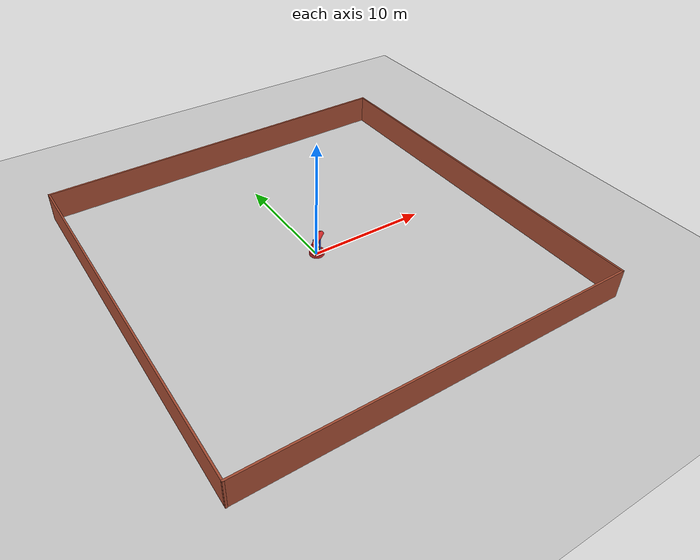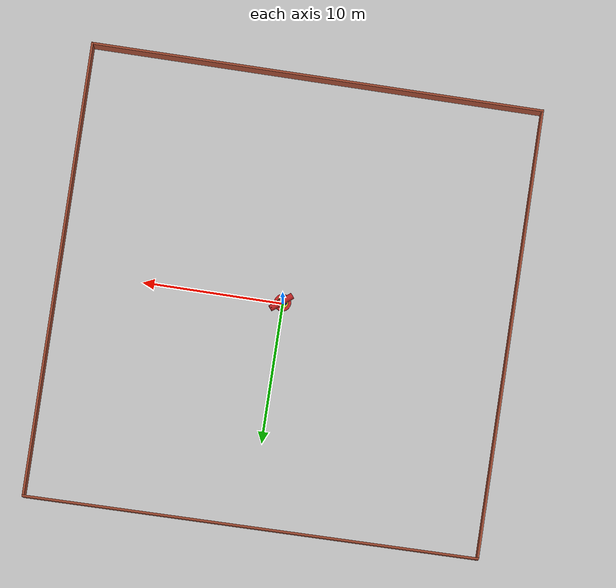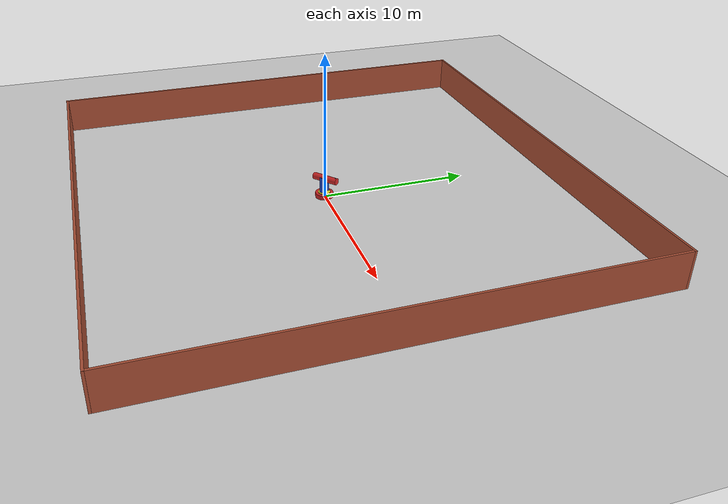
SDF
<sdf version="1.7">
 <world name="default">
  <light name="sun" type="directional">
   <pose>0 0 10 0 -0 0</pose>
   <diffuse>0.8 0.8 0.8 1</diffuse>
   <specular>0.2 0.2 0.2 1</specular>
   <attenuation>
    <range>1000</range>
    <constant>0.9</constant>
    <linear>0.01</linear>
    <quadratic>0.001</quadratic>
   </attenuation>
   <direction>-0.5 0.1 -0.9</direction>
   <spot><inner_angle>0</inner_angle><outer_angle>0</outer_angle><falloff>0</falloff></spot>
  </light>
  <model name="ground_plane">
   <static>1</static>
   <link name="link">
    <collision name="collision">
     <geometry><plane><normal>0 0 1</normal><size>100 100</size></plane></geometry>
     <surface>
      <contact><collide_bitmask>65535</collide_bitmask></contact>
      <friction><ode><mu>100</mu><mu2>50</mu2></ode></friction>
     </surface>
    </collision>
    <visual name="visual">
     <cast_shadows>0</cast_shadows>
     <geometry><plane><normal>0 0 1</normal><size>100 100</size></plane></geometry>
     <material>
      <script><uri>file://media/materials/scripts/gazebo.material</uri><name>Gazebo/Grey</name></script>
     </material>
    </visual>
   </link>
  </model>
  <gravity>0 0 -9.8</gravity>
  <magnetic_field>6e-06 2.3e-05 -4.2e-05</magnetic_field>
  <atmosphere type="adiabatic"/>
  <physics type="ode">
   <max_step_size>0.001</max_step_size>
   <real_time_factor>1</real_time_factor>
   <real_time_update_rate>1000</real_time_update_rate>
  </physics>
  <scene><ambient>0.4 0.4 0.4 1</ambient><background>0.7 0.7 0.7 1</background><shadows>1</shadows></scene>
  <audio><device>default</device></audio>
  <spherical_coordinates>
   <surface_model>EARTH_WGS84</surface_model>
   <latitude_deg>0</latitude_deg>
   <longitude_deg>0</longitude_deg>
   <elevation>0</elevation>
   <heading_deg>0</heading_deg>
  </spherical_coordinates>
  <light name="user_point_light_0" type="point">
   <pose>0.040895 0.233795 1 0 -0 0</pose>
   <diffuse>0.5 0.5 0.5 1</diffuse>
   <specular>0.1 0.1 0.1 1</specular>
   <attenuation>
    <range>20</range>
    <constant>0.5</constant>
    <linear>0.01</linear>
    <quadratic>0.001</quadratic>
   </attenuation>
   <cast_shadows>0</cast_shadows>
   <direction>0 0 -1</direction>
   <spot><inner_angle>0</inner_angle><outer_angle>0</outer_angle><falloff>0</falloff></spot>
  </light>
  <model name="robot_shooter">
   <link name="base_link">
    <inertial>
     <mass>5</mass>
     <inertia><ixx>0.4875</ixx><ixy>0</ixy><ixz>0</ixz><iyy>0.4875</iyy><iyz>0</iyz><izz>0.9</izz></inertia>
    </inertial>
    <collision name="base_link_collision">
     <geometry><cylinder><length>0.3</length><radius>0.6</radius></cylinder></geometry>
    </collision>
    <visual name="base_link_visual">
     <geometry><cylinder><length>0.3</length><radius>0.6</radius></cylinder></geometry>
     <material>
      <script><name>Gazebo/Red</name><uri>file://media/materials/scripts/gazebo.material</uri></script>
     </material>
    </visual>
   </link>
   <joint name="base_to_pan_joint" type="revolute">
    <pose relative_to="base_link">0 0 0.15 0 -0 0</pose>
    <parent>base_link</parent>
    <child>pan_link</child>
    <axis>
     <xyz>0 0 1</xyz>
     <limit><lower>-1e+16</lower><upper>1e+16</upper></limit>
     <dynamics>
      <damping>0.1</damping>
      <friction>0.1</friction>
      <spring_reference>0</spring_reference>
      <spring_stiffness>0</spring_stiffness>
     </dynamics>
    </axis>
   </joint>
   <link name="pan_link">
    <pose relative_to="base_to_pan_joint">0 0 0 0 -0 0</pose>
    <inertial>
     <pose>-0.05 0 0.08 0 -0 0</pose>
     <mass>2.5</mass>
     <inertia>
      <ixx>0.150667</ixx>
      <ixy>0</ixy>
      <ixz>0.04</ixz>
      <iyy>0.175667</iyy>
      <iyz>0</iyz>
      <izz>0.19</izz>
     </inertia>
    </inertial>
    <collision name="pan_link_collision">
     <geometry><cylinder><length>0.1</length><radius>0.4</radius></cylinder></geometry>
    </collision>
    <collision name="pan_link_fixed_joint_lump__left_pillar_link_collision_1">
     <pose>0.25 0 0.4 0 -0 0</pose>
     <geometry><box><size>0.02 0.4 1.5</size></box></geometry>
    </collision>
    <collision name="pan_link_fixed_joint_lump__right_pillar_link_collision_2">
     <pose>-0.25 0 0.4 0 -0 0</pose>
     <geometry><box><size>0.02 0.4 1.5</size></box></geometry>
    </collision>
    <visual name="pan_link_visual">
     <geometry><cylinder><length>0.1</length><radius>0.4</radius></cylinder></geometry>
     <material>
      <script><name>Gazebo/Yellow</name><uri>file://media/materials/scripts/gazebo.material</uri></script>
     </material>
    </visual>
    <visual name="pan_link_fixed_joint_lump__left_pillar_link_visual_1">
     <pose>0.25 0 0.4 0 -0 0</pose>
     <geometry><box><size>0.02 0.4 1.5</size></box></geometry>
     <material>
      <script><name>Gazebo/Blue</name><uri>file://media/materials/scripts/gazebo.material</uri></script>
     </material>
    </visual>
    <visual name="pan_link_fixed_joint_lump__right_pillar_link_visual_2">
     <pose>-0.25 0 0.4 0 -0 0</pose>
     <geometry><box><size>0.02 0.4 1.5</size></box></geometry>
     <material>
      <script><name>Gazebo/Blue</name><uri>file://media/materials/scripts/gazebo.material</uri></script>
     </material>
    </visual>
   </link>
   <joint name="right_pillar_to_barrel_joint" type="revolute">
    <pose relative_to="pan_link">-0.05 0 1.15 0 -0 0</pose>
    <parent>pan_link</parent>
    <child>barrel_link</child>
    <axis>
     <xyz>1 0 0</xyz>
     <limit><lower>-0.5</lower><upper>0.5</upper><effort>10</effort><velocity>1</velocity></limit>
     <dynamics><spring_reference>0</spring_reference><spring_stiffness>0</spring_stiffness></dynamics>
    </axis>
   </joint>
   <link name="barrel_link">
    <pose relative_to="right_pillar_to_barrel_joint">0 0 0 0 -0 0</pose>
    <inertial>
     <pose>0.004545 0.081818 0.013636 0 -0 0</pose>
     <mass>1.1</mass>
     <inertia>
      <ixx>0.0767818</ixx>
      <ixy>-0.00409091</ixy>
      <ixz>-0.000681818</ixz>
      <iyy>0.00337273</iyy>
      <iyz>-0.0122727</iyz>
      <izz>0.0749636</izz>
     </inertia>
    </inertial>
    <collision name="barrel_link_collision">
     <pose>0 0.1 0.1 1.65 -0 0</pose>
     <geometry><cylinder><length>1.8</length><radius>0.25</radius></cylinder></geometry>
    </collision>
    <collision name="barrel_link_fixed_joint_lump__camera_link_collision_1">
     <pose>0.05 0.9 0.15 0 -0 1.5708</pose>
     <geometry><box><size>0.05 0.05 0.05</size></box></geometry>
    </collision>
    <visual name="barrel_link_visual">
     <pose>0.05 0.1 -0.1 1.6 -0 0</pose>
     <geometry><cylinder><length>1.8</length><radius>0.227273</radius></cylinder></geometry>
     <material>
      <script><name>Gazebo/Red</name><uri>file://media/materials/scripts/gazebo.material</uri></script>
     </material>
    </visual>
    <visual name="barrel_link_fixed_joint_lump__camera_link_visual_1">
     <pose>0.05 0.9 0.15 0 -0 1.5708</pose>
     <geometry><box><size>0.05 0.05 0.05</size></box></geometry>
     <material>
      <script><name>Gazebo/Black</name><uri>file://media/materials/scripts/gazebo.material</uri></script>
     </material>
    </visual>
    <sensor name="camera" type="camera">
     <visualize>1</visualize>
     <update_rate>30</update_rate>
     <camera name="shooter_camera">
      <horizontal_fov>1.0472</horizontal_fov>
      <image><width>640</width><height>480</height><format>R8G8B8</format></image>
      <clip><near>0.02</near><far>80</far></clip>
      <noise><type>gaussian</type><mean>0</mean><stddev>0.007</stddev></noise>
     </camera>
     <plugin name="camera_controller" filename="libgazebo_ros_camera.so">
      <alwaysOn>1</alwaysOn>
      <updateRate>0.0</updateRate>
      <cameraName>shooter/camera</cameraName>
      <imageTopicName>image_raw</imageTopicName>
      <cameraInfoTopicName>camera_info</cameraInfoTopicName>
      <frameName>camera_link</frameName>
      <hackBaseline>0.07</hackBaseline>
      <distortionK1>0.0</distortionK1>
      <distortionK2>0.0</distortionK2>
      <distortionK3>0.0</distortionK3>
      <distortionT1>0.0</distortionT1>
      <distortionT2>0.0</distortionT2>
     </plugin>
     <pose>0.05 0.9 0.15 0 -0 1.5708</pose>
    </sensor>
   </link>
   <static>0</static>
   <plugin name="gazebo_ros2_control" filename="libgazebo_ros2_control.so">
    <parameters>/root/ros2_ws/install/robot_shooter/share/robot_shooter/config/shooter_controllers.yaml</parameters>
   </plugin>
   <pose>0.016589 -0.046727 0.199998 2e-06 -5e-06 -0.907052</pose>
  </model>
  <model name="walls_0">
   <pose>-0.088029 0.0138 0 0 -0 0</pose>
   <link name="Wall_35">
    <collision name="Wall_35_Collision">
     <geometry><box><size>32.2441 0.15 2.5</size></box></geometry>
     <pose>0 0 1.25 0 -0 0</pose>
    </collision>
    <visual name="Wall_35_Visual">
     <pose>0 0 1.25 0 -0 0</pose>
     <geometry><box><size>32.2441 0.15 2.5</size></box></geometry>
     <material>
      <script><uri>file://media/materials/scripts/gazebo.material</uri><name>Gazebo/Bricks</name></script>
      <ambient>1 1 1 1</ambient>
     </material>
     <meta><layer>0</layer></meta>
    </visual>
    <pose>-0 16 0 0 -0 0.010128</pose>
   </link>
   <link name="Wall_41">
    <collision name="Wall_41_Collision">
     <geometry><box><size>32.25 0.15 2.5</size></box></geometry>
     <pose>0 0 1.25 0 -0 0</pose>
    </collision>
    <visual name="Wall_41_Visual">
     <pose>0 0 1.25 0 -0 0</pose>
     <geometry><box><size>32.25 0.15 2.5</size></box></geometry>
     <material>
      <script><uri>file://media/materials/scripts/gazebo.material</uri><name>Gazebo/Bricks</name></script>
      <ambient>1 1 1 1</ambient>
     </material>
     <meta><layer>0</layer></meta>
    </visual>
    <pose>16.0465 -0.000283 0 0 -0 -1.5708</pose>
   </link>
   <link name="Wall_43">
    <collision name="Wall_43_Collision">
     <geometry><box><size>32.2436 0.15 2.5</size></box></geometry>
     <pose>0 0 1.25 0 -0 0</pose>
    </collision>
    <visual name="Wall_43_Visual">
     <pose>0 0 1.25 0 -0 0</pose>
     <geometry><box><size>32.2436 0.15 2.5</size></box></geometry>
     <material>
      <script><uri>file://media/materials/scripts/gazebo.material</uri><name>Gazebo/Bricks</name></script>
      <ambient>1 1 1 1</ambient>
     </material>
     <meta><layer>0</layer></meta>
    </visual>
    <pose>-0 -16.0298 0 0 -0 3.13904</pose>
   </link>
   <link name="Wall_45">
    <collision name="Wall_45_Collision">
     <geometry><box><size>32 0.15 2.5</size></box></geometry>
     <pose>0 0 1.25 0 -0 0</pose>
    </collision>
    <visual name="Wall_45_Visual">
     <pose>0 0 1.25 0 -0 0</pose>
     <geometry><box><size>32 0.15 2.5</size></box></geometry>
     <material>
      <script><uri>file://media/materials/scripts/gazebo.material</uri><name>Gazebo/Bricks</name></script>
      <ambient>1 1 1 1</ambient>
     </material>
     <meta><layer>0</layer></meta>
    </visual>
    <pose>-16.0465 -0.084283 0 0 -0 1.5708</pose>
   </link>
   <static>1</static>
  </model>
 </world>
</sdf>
